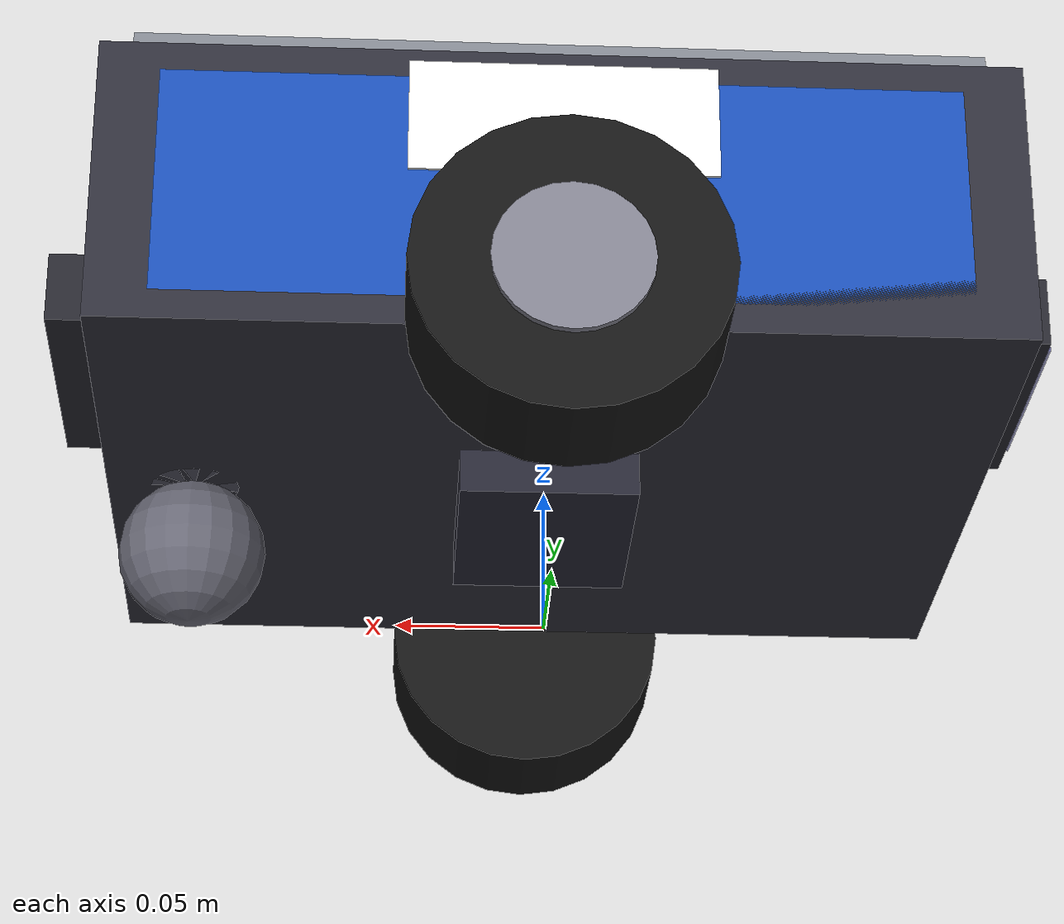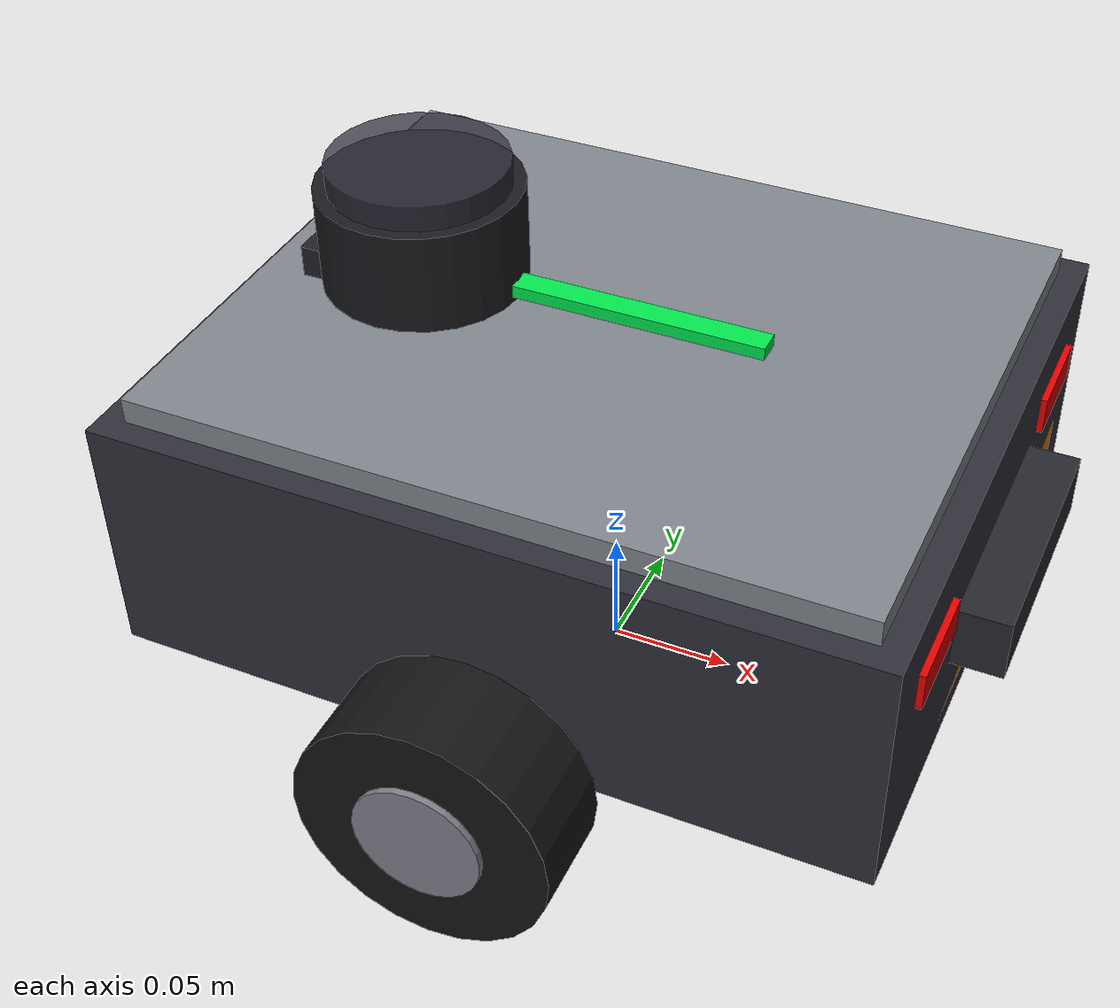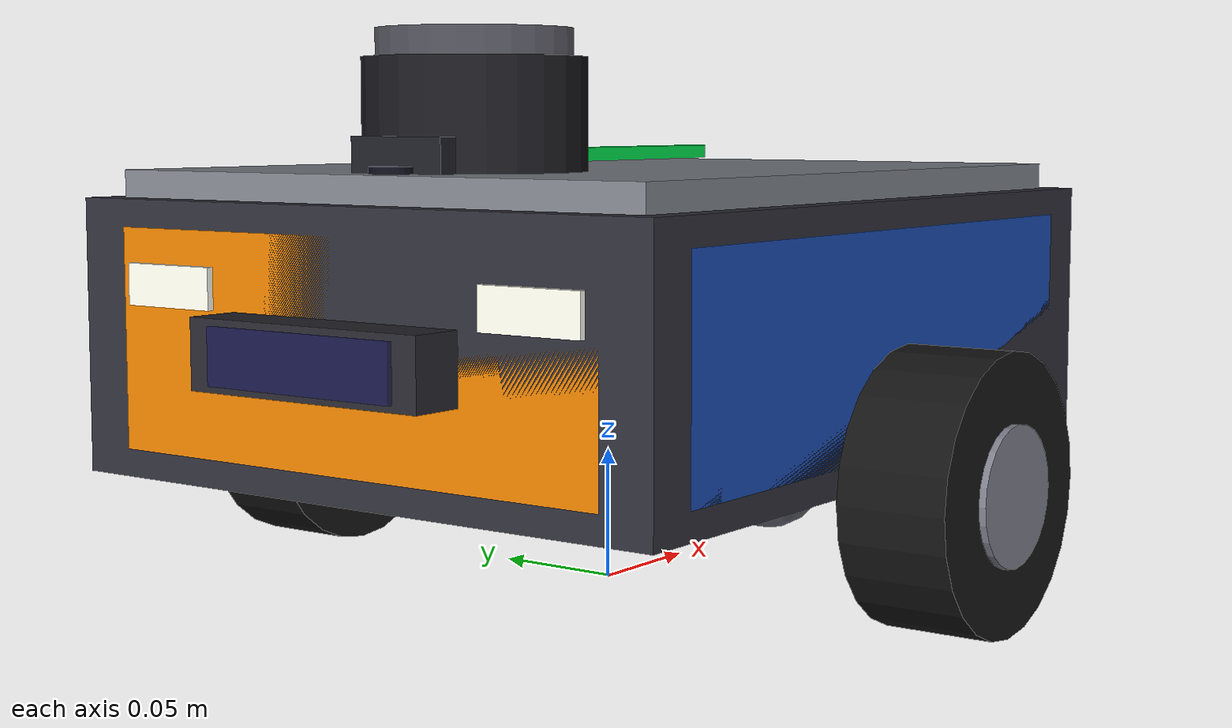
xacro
<?xml version="1.0"?>
<robot name="atlas_agv" xmlns:xacro="http://www.ros.org/wiki/xacro">

  <!-- === Physical Parameters (DO NOT MODIFY) === -->
  <xacro:property name="WR" value="0.05"/>
  <xacro:property name="WT" value="0.04"/>
  <xacro:property name="WS" value="0.30"/>
  <xacro:property name="BX" value="0.30"/>
  <xacro:property name="BY" value="0.25"/>
  <xacro:property name="BZ" value="0.10"/>
  <xacro:property name="BM" value="2.5"/>
  <xacro:property name="WM" value="0.2"/>
  <xacro:property name="CR" value="0.025"/>
  <xacro:property name="PI" value="3.14159265359"/>

  <!-- === Base Footprint (ground projection) === -->
  <link name="base_footprint"/>
  <joint name="base_joint" type="fixed">
    <parent link="base_footprint"/>
    <child link="base_link"/>
    <origin xyz="0 0 ${WR}" rpy="0 0 0"/>
  </joint>

  <!-- === Main Chassis (modern industrial platform) === -->
  <link name="base_link">
    <!-- Main body — rounded chassis appearance via layered visuals -->
    <visual name="chassis_main">
      <origin xyz="0 0 ${BZ/2}"/>
      <geometry><box size="${BX} ${BY} ${BZ}"/></geometry>
      <material name="atlas_dark_gray"><color rgba="0.18 0.18 0.22 1"/></material>
    </visual>
    <!-- Top cover plate (lighter) -->
    <visual name="top_plate">
      <origin xyz="0 0 ${BZ + 0.005}"/>
      <geometry><box size="${BX-0.02} ${BY-0.02} 0.01"/></geometry>
      <material name="atlas_silver"><color rgba="0.5 0.52 0.55 1"/></material>
    </visual>
    <!-- Front bumper -->
    <visual name="front_bumper">
      <origin xyz="-${BX/2 - 0.01} 0 ${BZ/2}"/>
      <geometry><box size="0.02 ${BY-0.04} ${BZ-0.02}"/></geometry>
      <material name="atlas_orange"><color rgba="0.9 0.5 0.0 1"/></material>
    </visual>
    <!-- Rear bumper -->
    <visual name="rear_bumper">
      <origin xyz="${BX/2 - 0.01} 0 ${BZ/2}"/>
      <geometry><box size="0.02 ${BY-0.04} ${BZ-0.02}"/></geometry>
      <material name="atlas_orange2"><color rgba="0.9 0.5 0.0 1"/></material>
    </visual>
    <!-- Side panels (blue accent) -->
    <visual name="side_left">
      <origin xyz="0 ${BY/2 - 0.005} ${BZ/2}"/>
      <geometry><box size="${BX-0.04} 0.01 ${BZ-0.02}"/></geometry>
      <material name="atlas_blue"><color rgba="0.1 0.3 0.7 1"/></material>
    </visual>
    <visual name="side_right">
      <origin xyz="0 -${BY/2 - 0.005} ${BZ/2}"/>
      <geometry><box size="${BX-0.04} 0.01 ${BZ-0.02}"/></geometry>
      <material name="atlas_blue2"><color rgba="0.1 0.3 0.7 1"/></material>
    </visual>
    <!-- Front headlights (white LED strips) -->
    <visual name="headlight_L">
      <origin xyz="-${BX/2} 0.08 ${BZ*0.7}"/>
      <geometry><box size="0.005 0.04 0.015"/></geometry>
      <material name="led_white"><color rgba="1.0 1.0 0.95 1"/></material>
    </visual>
    <visual name="headlight_R">
      <origin xyz="-${BX/2} -0.08 ${BZ*0.7}"/>
      <geometry><box size="0.005 0.04 0.015"/></geometry>
      <material name="led_white2"><color rgba="1.0 1.0 0.95 1"/></material>
    </visual>
    <!-- Rear tail lights (red) -->
    <visual name="taillight_L">
      <origin xyz="${BX/2} 0.08 ${BZ*0.7}"/>
      <geometry><box size="0.005 0.04 0.015"/></geometry>
      <material name="led_red"><color rgba="0.9 0.0 0.0 1"/></material>
    </visual>
    <visual name="taillight_R">
      <origin xyz="${BX/2} -0.08 ${BZ*0.7}"/>
      <geometry><box size="0.005 0.04 0.015"/></geometry>
      <material name="led_red2"><color rgba="0.9 0.0 0.0 1"/></material>
    </visual>
    <!-- Status LED strip (top, green = operational) -->
    <visual name="status_led">
      <origin xyz="0 0 ${BZ + 0.015}"/>
      <geometry><box size="0.12 0.01 0.005"/></geometry>
      <material name="led_green"><color rgba="0.0 0.9 0.3 1"/></material>
    </visual>
    <!-- ID panel / branding -->
    <visual name="id_panel">
      <origin xyz="0 ${BY/2 + 0.001} ${BZ*0.75}"/>
      <geometry><box size="0.10 0.001 0.04"/></geometry>
      <material name="atlas_brand"><color rgba="0.95 0.95 0.95 1"/></material>
    </visual>

    <!-- Collision (unchanged) -->
    <collision>
      <origin xyz="0 0 ${BZ/2}"/>
      <geometry><box size="${BX} ${BY} ${BZ}"/></geometry>
    </collision>
    <!-- Inertial (unchanged) -->
    <inertial>
      <mass value="${BM}"/>
      <inertia ixx="${BM*(BY*BY+BZ*BZ)/12}" ixy="0" ixz="0"
               iyy="${BM*(BX*BX+BZ*BZ)/12}" iyz="0"
               izz="${BM*(BX*BX+BY*BY)/12}"/>
    </inertial>
  </link>

  <!-- === Sensor Tower (Lidar + Camera + RFID antenna) === -->
  <link name="sensor_tower">
    <!-- Lidar housing (cylindrical, dark) -->
    <visual name="lidar_housing">
      <origin xyz="0 0 0.03"/>
      <geometry><cylinder radius="0.04" length="0.04"/></geometry>
      <material name="lidar_mat"><color rgba="0.1 0.1 0.12 1"/></material>
    </visual>
    <!-- Lidar dome (slightly transparent look) -->
    <visual name="lidar_dome">
      <origin xyz="0 0 0.055"/>
      <geometry><cylinder radius="0.035" length="0.01"/></geometry>
      <material name="lidar_glass"><color rgba="0.2 0.2 0.25 0.8"/></material>
    </visual>
    <!-- Camera housing -->
    <visual name="camera_housing">
      <origin xyz="-0.03 0 0.01"/>
      <geometry><box size="0.025 0.04 0.025"/></geometry>
      <material name="cam_mat"><color rgba="0.12 0.12 0.15 1"/></material>
    </visual>
    <!-- Camera lens -->
    <visual name="camera_lens">
      <origin xyz="-0.044 0 0.01"/>
      <geometry><cylinder radius="0.008" length="0.005"/></geometry>
      <material name="lens_mat"><color rgba="0.05 0.05 0.1 1"/></material>
    </visual>
  </link>
  <joint name="sensor_tower_joint" type="fixed">
    <parent link="base_link"/>
    <child link="sensor_tower"/>
    <origin xyz="-0.08 0 ${BZ}" rpy="0 0 0"/>
  </joint>

  <!-- === RFID Antenna Housing === -->
  <link name="rfid_antenna">
    <visual name="rfid_box">
      <geometry><box size="0.06 0.08 0.015"/></geometry>
      <material name="rfid_mat"><color rgba="0.15 0.15 0.2 1"/></material>
    </visual>
    <visual name="rfid_indicator">
      <origin xyz="0 0 0.01"/>
      <geometry><cylinder radius="0.005" length="0.005"/></geometry>
      <material name="rfid_led"><color rgba="0.0 0.5 1.0 1"/></material>
    </visual>
  </link>
  <joint name="rfid_joint" type="fixed">
    <parent link="base_link"/>
    <child link="rfid_antenna"/>
    <origin xyz="0 0 -0.01" rpy="0 0 0"/>
  </joint>

  <!-- === Safety Scanner Housings (front + rear) === -->
  <link name="safety_scanner_front">
    <visual>
      <geometry><box size="0.02 0.1 0.025"/></geometry>
      <material name="scanner_mat"><color rgba="0.15 0.15 0.18 1"/></material>
    </visual>
    <visual name="scanner_window">
      <origin xyz="-0.011 0 0"/>
      <geometry><box size="0.002 0.08 0.02"/></geometry>
      <material name="scanner_glass"><color rgba="0.1 0.1 0.4 0.6"/></material>
    </visual>
  </link>
  <joint name="scanner_front_joint" type="fixed">
    <parent link="base_link"/>
    <child link="safety_scanner_front"/>
    <origin xyz="-${BX/2 + 0.01} 0 ${BZ/2}" rpy="0 0 0"/>
  </joint>

  <link name="safety_scanner_rear">
    <visual>
      <geometry><box size="0.02 0.1 0.025"/></geometry>
      <material name="scanner_mat_r"><color rgba="0.15 0.15 0.18 1"/></material>
    </visual>
  </link>
  <joint name="scanner_rear_joint" type="fixed">
    <parent link="base_link"/>
    <child link="safety_scanner_rear"/>
    <origin xyz="${BX/2 + 0.01} 0 ${BZ/2}" rpy="0 0 0"/>
  </joint>

  <!-- === Drive Wheels (industrial rubber with hub detail) === -->
  <xacro:macro name="wheel" params="name y_sign">
    <link name="${name}_wheel">
      <!-- Tire -->
      <visual name="tire">
        <origin rpy="${PI/2} 0 0"/>
        <geometry><cylinder radius="${WR}" length="${WT}"/></geometry>
        <material name="tire_rubber"><color rgba="0.08 0.08 0.08 1"/></material>
      </visual>
      <!-- Hub cap -->
      <visual name="hub">
        <origin xyz="0 ${y_sign*WT/2} 0" rpy="${PI/2} 0 0"/>
        <geometry><cylinder radius="${WR*0.5}" length="0.005"/></geometry>
        <material name="hub_metal"><color rgba="0.5 0.5 0.55 1"/></material>
      </visual>
      <collision>
        <origin rpy="${PI/2} 0 0"/>
        <geometry><cylinder radius="${WR}" length="${WT}"/></geometry>
      </collision>
      <inertial>
        <mass value="${WM}"/>
        <inertia ixx="${WM*(3*WR*WR+WT*WT)/12}" ixy="0" ixz="0"
                 iyy="${WM*(3*WR*WR+WT*WT)/12}" iyz="0"
                 izz="${WM*WR*WR/2}"/>
      </inertial>
    </link>
    <joint name="${name}_wheel_joint" type="continuous">
      <parent link="base_link"/>
      <child link="${name}_wheel"/>
      <origin xyz="0 ${y_sign*WS/2} 0"/>
      <axis xyz="0 1 0"/>
      <dynamics damping="0.5" friction="0.3"/>
    </joint>
    <gazebo reference="${name}_wheel">
      <mu1>1.5</mu1><mu2>1.0</mu2>
      <kp>1e6</kp><kd>10</kd>
      <minDepth>0.001</minDepth>
    </gazebo>
  </xacro:macro>

  <xacro:wheel name="left" y_sign="1"/>
  <xacro:wheel name="right" y_sign="-1"/>

  <!-- === Caster Wheel (swivel housing) === -->
  <link name="caster_wheel">
    <visual name="caster_ball">
      <geometry><sphere radius="${CR}"/></geometry>
      <material name="caster_mat"><color rgba="0.4 0.4 0.45 1"/></material>
    </visual>
    <visual name="caster_mount">
      <origin xyz="0 0 ${CR + 0.005}"/>
      <geometry><cylinder radius="0.015" length="0.01"/></geometry>
      <material name="caster_mount_mat"><color rgba="0.3 0.3 0.35 1"/></material>
    </visual>
    <collision><geometry><sphere radius="${CR}"/></geometry></collision>
    <inertial>
      <mass value="0.05"/>
      <inertia ixx="1e-5" ixy="0" ixz="0" iyy="1e-5" iyz="0" izz="1e-5"/>
    </inertial>
  </link>
  <joint name="caster_joint" type="fixed">
    <parent link="base_link"/>
    <child link="caster_wheel"/>
    <origin xyz="0.12 0 ${CR-WR}"/>
  </joint>
  <gazebo reference="caster_wheel">
    <mu1>0.0</mu1><mu2>0.0</mu2>
  </gazebo>

  <!-- === IMU Sensor (LOCKED — do not modify plugin) === -->
  <link name="imu_link"/>
  <joint name="imu_joint" type="fixed">
    <parent link="base_link"/><child link="imu_link"/>
    <origin xyz="0 0 ${BZ/2}"/>
  </joint>
  <gazebo reference="imu_link">
    <sensor name="atlas_imu" type="imu">
      <always_on>true</always_on>
      <update_rate>100</update_rate>
      <plugin name="imu_plugin" filename="libgazebo_ros_imu_sensor.so">
        <ros><namespace>/atlas</namespace>
        <remapping>~/out:=imu</remapping></ros>
        <frame_name>imu_link</frame_name>
      </plugin>
    </sensor>
  </gazebo>

  <!-- === Diff Drive Plugin (LOCKED — do not modify) === -->
  <gazebo>
    <plugin name="atlas_drive" filename="libgazebo_ros_diff_drive.so">
      <ros><namespace>/atlas</namespace></ros>
      <update_rate>50</update_rate>
      <left_joint>left_wheel_joint</left_joint>
      <right_joint>right_wheel_joint</right_joint>
      <wheel_separation>${WS}</wheel_separation>
      <wheel_diameter>${2*WR}</wheel_diameter>
      <max_wheel_torque>5.0</max_wheel_torque>
      <max_wheel_acceleration>2.0</max_wheel_acceleration>
      <publish_odom>true</publish_odom>
      <publish_odom_tf>true</publish_odom_tf>
      <publish_wheel_tf>true</publish_wheel_tf>
      <odometry_frame>odom</odometry_frame>
      <robot_base_frame>base_footprint</robot_base_frame>
      <command_topic>cmd_vel</command_topic>
      <odometry_topic>odom</odometry_topic>
    </plugin>
  </gazebo>

  <!-- === Gazebo Visual Materials === -->
  <gazebo reference="base_link">
    <material>Gazebo/DarkGrey</material>
  </gazebo>
  <gazebo reference="sensor_tower">
    <material>Gazebo/Black</material>
  </gazebo>
  <gazebo reference="rfid_antenna">
    <material>Gazebo/Black</material>
  </gazebo>
  <gazebo reference="safety_scanner_front">
    <material>Gazebo/Black</material>
  </gazebo>
  <gazebo reference="safety_scanner_rear">
    <material>Gazebo/Black</material>
  </gazebo>

</robot>
